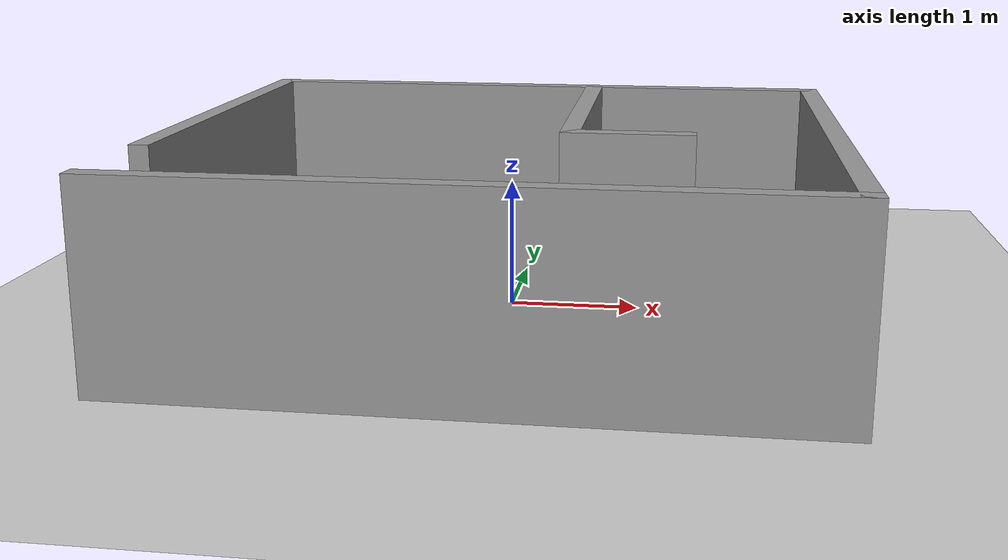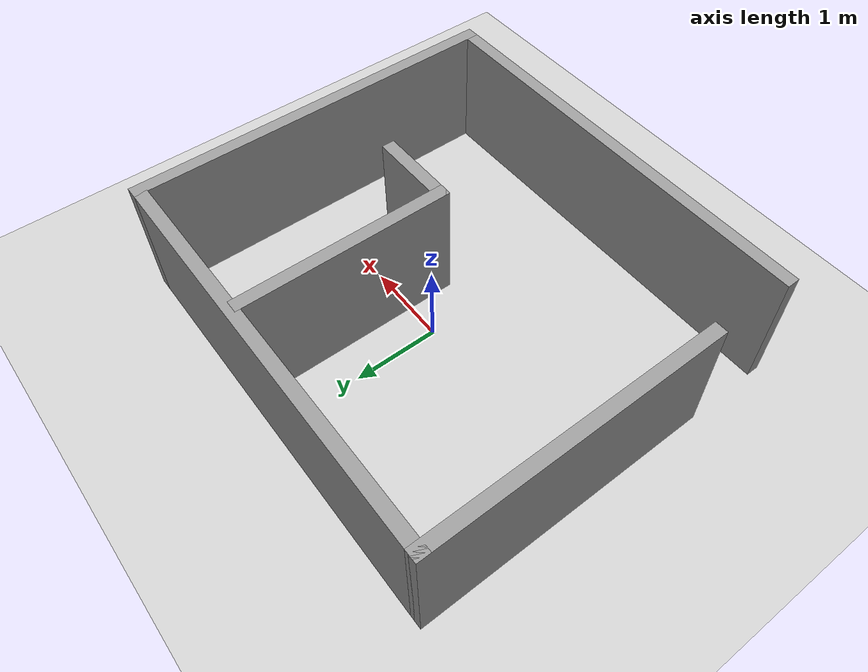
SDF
<sdf version='1.4'>
  <world name='nuglebot_world'>
    <!-- A global light source -->
    <include>
      <uri>model://sun</uri>
    </include>

    <!-- A ground plane -->
    <include>
      <uri>model://ground_plane</uri>
    </include>

    <physics type="ode">
      <real_time_update_rate>1000.0</real_time_update_rate>
      <max_step_size>0.001</max_step_size>
      <real_time_factor>1</real_time_factor>
      <ode>
        <solver>
          <type>quick</type>
          <iters>150</iters>
          <precon_iters>0</precon_iters>
          <sor>1.400000</sor>
          <use_dynamic_moi_rescaling>1</use_dynamic_moi_rescaling>
        </solver>
        <constraints>
          <cfm>0.00001</cfm>
          <erp>0.2</erp>
          <contact_max_correcting_vel>2000.000000</contact_max_correcting_vel>
          <contact_surface_layer>0.01000</contact_surface_layer>
        </constraints>
      </ode>
    </physics>

    <!-- Load world -->
    <include>
     <pose>0 0 0 0 0 0</pose>
      <uri>model://nuglebot/models/small_room</uri>
    </include>

    <scene>
      <ambient>0.4 0.4 0.4 1</ambient>
      <background>0.7 0.7 0.7 1</background>
      <shadows>true</shadows>
    </scene>

    <gui fullscreen='0'>
      <camera name='user_camera'>
        <pose>0.8 0.0 12.0 0 1.5708 0</pose>
        <view_controller>orbit</view_controller>
      </camera>
    </gui>
  </world>
</sdf>

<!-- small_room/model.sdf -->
<sdf version='1.7'>
  <model name='small_room'>
    <pose>0.565 -2.4725 0 0 -0 0</pose>
    <link name='Wall_0'>
      <collision name='Wall_0_Collision'>
        <geometry>
          <box>
            <size>3.5 0.15 1.5</size>
          </box>
        </geometry>
        <pose>0 0 0.75 0 -0 0</pose>
      </collision>
      <visual name='Wall_0_Visual'>
        <pose>0 0 0.75 0 -0 0</pose>
        <geometry>
          <box>
            <size>3.5 0.15 1.5</size>
          </box>
        </geometry>
        <material>
          <script>
            <uri>file://media/materials/scripts/gazebo.material</uri>
            <name>Gazebo/Grey</name>
          </script>
          <ambient>1 1 1 1</ambient>
        </material>
        <meta>
          <layer>0</layer>
        </meta>
      </visual>
      <pose>-2.425 0.2775 0 0 -0 1.5708</pose>
    </link>
    <link name='Wall_1'>
      <collision name='Wall_1_Collision'>
        <geometry>
          <box>
            <size>5 0.15 1.5</size>
          </box>
        </geometry>
        <pose>0 0 0.75 0 -0 0</pose>
      </collision>
      <visual name='Wall_1_Visual'>
        <pose>0 0 0.75 0 -0 0</pose>
        <geometry>
          <box>
            <size>5 0.15 1.5</size>
          </box>
        </geometry>
        <material>
          <script>
            <uri>file://media/materials/scripts/gazebo.material</uri>
            <name>Gazebo/Grey</name>
          </script>
          <ambient>1 1 1 1</ambient>
        </material>
        <meta>
          <layer>0</layer>
        </meta>
      </visual>
      <pose>-0 1.9525 0 0 -0 0</pose>
    </link>
    <link name='Wall_2'>
      <collision name='Wall_2_Collision'>
        <geometry>
          <box>
            <size>4.5 0.15 1.5</size>
          </box>
        </geometry>
        <pose>0 0 0.75 0 -0 0</pose>
      </collision>
      <visual name='Wall_2_Visual'>
        <pose>0 0 0.75 0 -0 0</pose>
        <geometry>
          <box>
            <size>4.5 0.15 1.5</size>
          </box>
        </geometry>
        <material>
          <script>
            <uri>file://media/materials/scripts/gazebo.material</uri>
            <name>Gazebo/Grey</name>
          </script>
          <ambient>1 1 1 1</ambient>
        </material>
        <meta>
          <layer>0</layer>
        </meta>
      </visual>
      <pose>2.425 -0.2225 0 0 -0 -1.5708</pose>
    </link>
    <link name='Wall_3'>
      <collision name='Wall_3_Collision'>
        <geometry>
          <box>
            <size>5 0.15 1.5</size>
          </box>
        </geometry>
        <pose>0 0 0.75 0 -0 0</pose>
      </collision>
      <visual name='Wall_3_Visual'>
        <pose>0 0 0.75 0 -0 0</pose>
        <geometry>
          <box>
            <size>5 0.15 1.5</size>
          </box>
        </geometry>
        <material>
          <script>
            <uri>file://media/materials/scripts/gazebo.material</uri>
            <name>Gazebo/Grey</name>
          </script>
          <ambient>1 1 1 1</ambient>
        </material>
        <meta>
          <layer>0</layer>
        </meta>
      </visual>
      <pose>-0 -2.3975 0 0 -0 3.14159</pose>
    </link>
    <link name='Wall_5'>
      <collision name='Wall_5_Collision'>
        <geometry>
          <box>
            <size>2.5 0.15 1.5</size>
          </box>
        </geometry>
        <pose>0 0 0.75 0 -0 0</pose>
      </collision>
      <visual name='Wall_5_Visual'>
        <pose>0 0 0.75 0 -0 0</pose>
        <geometry>
          <box>
            <size>2.5 0.15 1.5</size>
          </box>
        </geometry>
        <material>
          <script>
            <uri>file://media/materials/scripts/gazebo.material</uri>
            <name>Gazebo/Grey</name>
          </script>
          <ambient>1 1 1 1</ambient>
        </material>
        <meta>
          <layer>0</layer>
        </meta>
      </visual>
      <pose>0.499 0.6865 0 0 -0 -1.5708</pose>
    </link>
    <link name='Wall_6'>
      <collision name='Wall_6_Collision'>
        <geometry>
          <box>
            <size>1 0.15 1.5</size>
          </box>
        </geometry>
        <pose>0 0 0.75 0 -0 0</pose>
      </collision>
      <visual name='Wall_6_Visual'>
        <pose>0 0 0.75 0 -0 0</pose>
        <geometry>
          <box>
            <size>1 0.15 1.5</size>
          </box>
        </geometry>
        <material>
          <script>
            <uri>file://media/materials/scripts/gazebo.material</uri>
            <name>Gazebo/Grey</name>
          </script>
          <ambient>1 1 1 1</ambient>
        </material>
        <meta>
          <layer>0</layer>
        </meta>
      </visual>
      <pose>0.924 -0.4885 0 0 -0 0</pose>
    </link>
    <static>1</static>
  </model>
</sdf>
